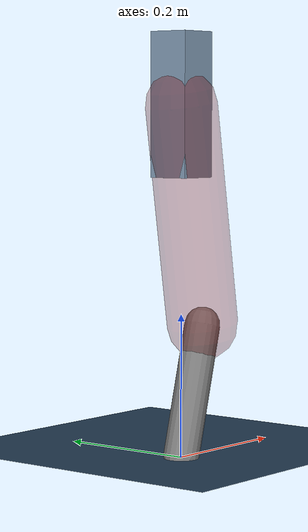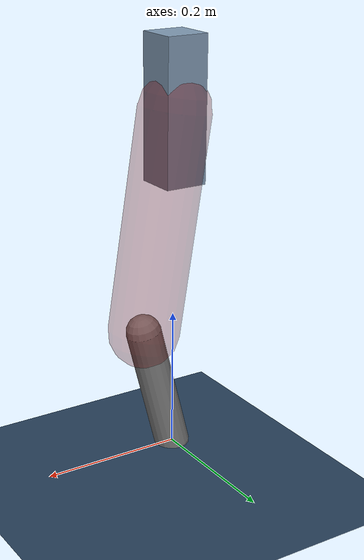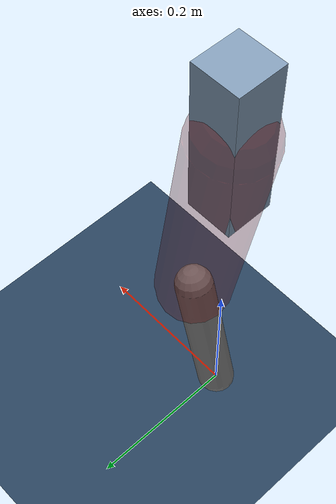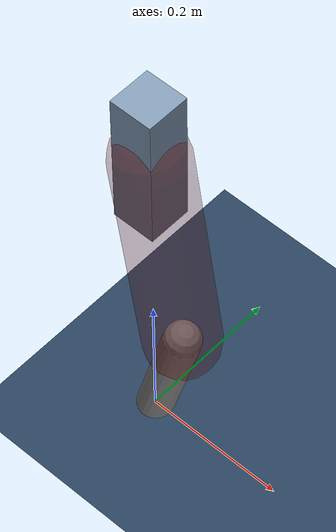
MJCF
<mujoco model="Hopper2D">
	<compiler inertiafromgeom="true" angle="radian" />
	<option timestep="0.001" integrator="implicit" cone="elliptic" solver="Newton" tolerance="1e-10" />

	<default>
		<geom contype="1" conaffinity="1" condim="3" friction="2 0.005 0.0001" solref="0.005 1" />
		<joint limited="true" damping="0.1" />
	</default>

	<asset>
		<texture name="skybox" type="skybox" builtin="gradient" rgb1=".4 .6 .8" rgb2="0 0 0" width="800" height="800" />
		<texture name="grid" type="2d" builtin="checker" rgb1=".1 .2 .3" rgb2=".2 .3 .4" width="300" height="300" mark="edge" markrgb=".2 .3 .4" />
		<material name="ground" texture="grid" texrepeat="1 1" texuniform="true" reflectance="0.1" />
		<material name="leg" rgba="0.5 0.6 0.7 1" />
	</asset>

	<worldbody>

		<geom name="floor" type="plane" size="5 5 0.25" material="ground" />

		<light directional="false" diffuse="0.8 0.8 0.8" specular="0.3 0.3 0.3" pos="0 0 2" dir="0 0 -1" />
		<light mode="targetbodycom" target="base" directional="false" diffuse="0.8 0.8 0.8" specular="0.3 0.3 0.3" pos="0 0 2" dir="0 0 -1" />

		<camera name="fixed" pos="0 -2 1" xyaxes="1 0 0 0 0 1" />
		<camera name="tracking" mode="trackcom" pos="0 -3 1" />

		<body name="root" pos="0 0 0.4902199070374218">
			<joint name="slide_x" type="slide" axis="1 0 0" range="-100 100" />
			<joint name="slide_z" type="slide" axis="0 0 1" range="0 10" />

			<body name="base" pos="0 0 0">
				<geom name="torso" type="box" size="0.03 0.03 0.1" mass="2.171" material="leg" />

				<body name="link1" pos="0 0 0" euler="0 1.415607241978451 0">
					<joint type="hinge" axis="0 -1 0" pos="0 0 0" name="hinge1" limited="true" range="-3.14 3.14" stiffness="0" damping="0.1" />
					<geom name="thigh" type="capsule" fromto="0 0 0 0.31162947915811434 0 0" size="0.05" rgba="0.5 0 0 0.3" mass="1.0202995937269088" />

					<body name="link2" pos="0.31162947915811434 0 0" euler="0 0.4134593259316858 0">
						<joint type="hinge" axis="0 -1 0" pos="0 0 0" name="hinge2" limited="true" range="-3.14 3.14" stiffness="0" damping="0.1" />
						<geom name="shank" type="capsule" fromto="0 0 0 0.1885904278793075 0 0" size="0.025" mass="0.3912313850913767" />

					</body>
				</body>
			</body>
		</body>
	</worldbody>

	<actuator>
		<motor name="torque1" joint="hinge1" ctrlrange="-60.86109990405277 60.86109990405277" ctrllimited="true" gear="1" />
		<motor name="torque2" joint="hinge2" ctrlrange="-88.6370802087505 88.6370802087505" ctrllimited="true" gear="1" />
	</actuator>
</mujoco>
